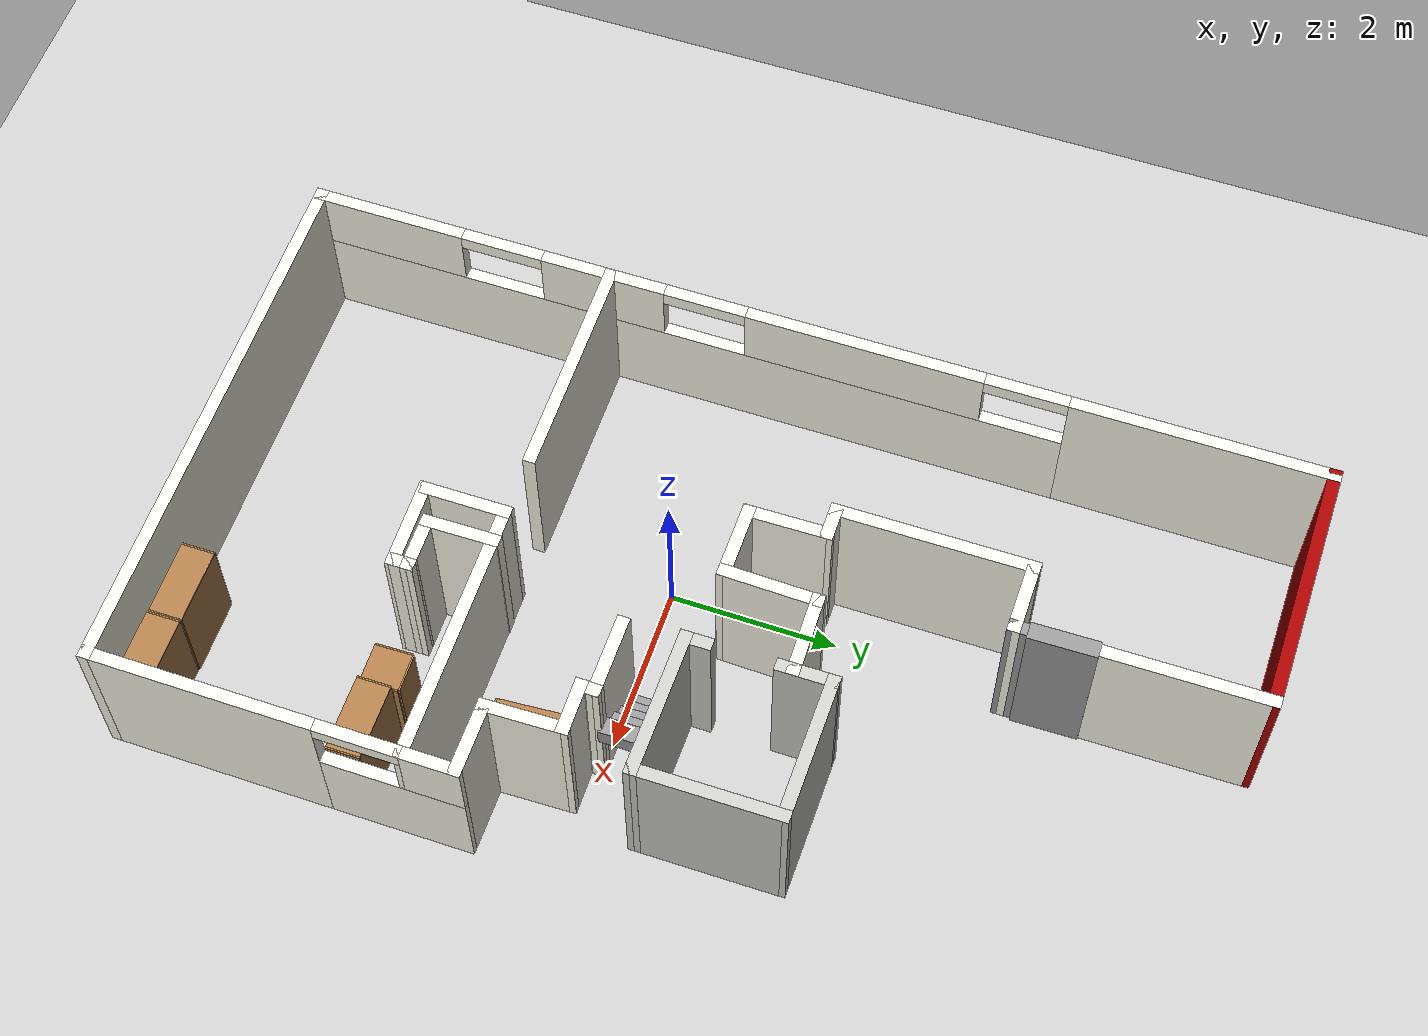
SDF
<sdf version="1.6">
 <world name="default">
  <light name="sun" type="directional">
   <pose>0 0 10 0 -0 0</pose>
   <diffuse>0.8 0.8 0.8 1</diffuse>
   <specular>0.2 0.2 0.2 1</specular>
   <attenuation>
    <range>1000</range>
    <constant>0.9</constant>
    <linear>0.01</linear>
    <quadratic>0.001</quadratic>
   </attenuation>
   <direction>-0.5 0.1 -0.9</direction>
  </light>
  <model name="ground_plane">
   <static>1</static>
   <link name="link">
    <collision name="collision">
     <geometry><plane><normal>0 0 1</normal><size>100 100</size></plane></geometry>
     <surface>
      <contact><collide_bitmask>65535</collide_bitmask></contact>
      <friction><ode><mu>100</mu><mu2>50</mu2></ode></friction>
     </surface>
    </collision>
    <visual name="visual">
     <cast_shadows>0</cast_shadows>
     <geometry><plane><normal>0 0 1</normal><size>100 100</size></plane></geometry>
     <material>
      <script><uri>file://media/materials/scripts/gazebo.material</uri><name>Gazebo/Grey</name></script>
     </material>
    </visual>
   </link>
  </model>
  <gravity>0 0 -9.8</gravity>
  <magnetic_field>6e-06 2.3e-05 -4.2e-05</magnetic_field>
  <atmosphere type="adiabatic"/>
  <physics name="default_physics" default="0" type="ode">
   <max_step_size>0.001</max_step_size>
   <real_time_factor>1</real_time_factor>
   <real_time_update_rate>1000</real_time_update_rate>
  </physics>
  <scene><ambient>0.4 0.4 0.4 1</ambient><background>0.7 0.7 0.7 1</background><shadows>1</shadows></scene>
  <spherical_coordinates>
   <surface_model>EARTH_WGS84</surface_model>
   <latitude_deg>0</latitude_deg>
   <longitude_deg>0</longitude_deg>
   <elevation>0</elevation>
   <heading_deg>0</heading_deg>
  </spherical_coordinates>
  <model name="Apartment">
   <pose>0.435698 0.75844 0 0 -0 0</pose>
   <link name="Door_0">
    <collision name="Door_0_Collision">
     <geometry><box><size>0.792 0.2 2</size></box></geometry>
     <pose>0 0 1 0 -0 0</pose>
    </collision>
    <visual name="Door_0_Visual">
     <pose>0 0 1 0 -0 0</pose>
     <geometry><box><size>0.792 0.2 2</size></box></geometry>
     <material>
      <script><uri>file://media/materials/scripts/gazebo.material</uri><name>Gazebo/Grey</name></script>
     </material>
    </visual>
    <pose>-0.272982 3.76942 0 0 -0 1.58229</pose>
   </link>
   <link name="Stairs_1">
    <visual name="Stairs_1_Visual_0">
     <pose>1.08577 -0.451347 0.12 0 -0 1.5708</pose>
     <geometry><box><size>0.6 0.2 0.24</size></box></geometry>
     <material>
      <script><uri>file://media/materials/scripts/gazebo.material</uri><name>Gazebo/Grey</name></script>
      <ambient>1 1 1 1</ambient>
     </material>
     <meta><layer>0</layer></meta>
    </visual>
    <collision name="Stairs_1_Collision_0">
     <geometry><box><size>0.6 0.2 0.24</size></box></geometry>
     <pose>1.08577 -0.451347 0.12 0 -0 1.5708</pose>
    </collision>
    <visual name="Stairs_1_Visual_1">
     <pose>1.28577 -0.451347 0.36 0 -0 1.5708</pose>
     <geometry><box><size>0.6 0.2 0.24</size></box></geometry>
     <material>
      <script><uri>file://media/materials/scripts/gazebo.material</uri><name>Gazebo/Grey</name></script>
      <ambient>1 1 1 1</ambient>
     </material>
     <meta><layer>0</layer></meta>
    </visual>
    <collision name="Stairs_1_Collision_1">
     <geometry><box><size>0.6 0.2 0.24</size></box></geometry>
     <pose>1.28577 -0.451347 0.36 0 -0 1.5708</pose>
    </collision>
    <visual name="Stairs_1_Visual_2">
     <pose>1.48577 -0.451347 0.6 0 -0 1.5708</pose>
     <geometry><box><size>0.6 0.2 0.24</size></box></geometry>
     <material>
      <script><uri>file://media/materials/scripts/gazebo.material</uri><name>Gazebo/Grey</name></script>
      <ambient>1 1 1 1</ambient>
     </material>
     <meta><layer>0</layer></meta>
    </visual>
    <collision name="Stairs_1_Collision_2">
     <geometry><box><size>0.6 0.2 0.24</size></box></geometry>
     <pose>1.48577 -0.451347 0.6 0 -0 1.5708</pose>
    </collision>
    <visual name="Stairs_1_Visual_3">
     <pose>1.68577 -0.451347 0.84 0 -0 1.5708</pose>
     <geometry><box><size>0.6 0.2 0.24</size></box></geometry>
     <material>
      <script><uri>file://media/materials/scripts/gazebo.material</uri><name>Gazebo/Grey</name></script>
      <ambient>1 1 1 1</ambient>
     </material>
     <meta><layer>0</layer></meta>
    </visual>
    <collision name="Stairs_1_Collision_3">
     <geometry><box><size>0.6 0.2 0.24</size></box></geometry>
     <pose>1.68577 -0.451347 0.84 0 -0 1.5708</pose>
    </collision>
    <visual name="Stairs_1_Visual_4">
     <pose>1.88577 -0.451347 1.08 0 -0 1.5708</pose>
     <geometry><box><size>0.6 0.2 0.24</size></box></geometry>
     <material>
      <script><uri>file://media/materials/scripts/gazebo.material</uri><name>Gazebo/Grey</name></script>
      <ambient>1 1 1 1</ambient>
     </material>
     <meta><layer>0</layer></meta>
    </visual>
    <collision name="Stairs_1_Collision_4">
     <geometry><box><size>0.6 0.2 0.24</size></box></geometry>
     <pose>1.88577 -0.451347 1.08 0 -0 1.5708</pose>
    </collision>
   </link>
   <link name="Wall_0">
    <collision name="Wall_0_Collision">
     <geometry><box><size>2.97893 0.15 2</size></box></geometry>
     <pose>0 0 1 0 -0 0</pose>
    </collision>
    <visual name="Wall_0_Visual">
     <pose>0 0 1 0 -0 0</pose>
     <geometry><box><size>2.97893 0.15 2</size></box></geometry>
     <material>
      <script><uri>file://media/materials/scripts/gazebo.material</uri><name>Gazebo/Grey</name></script>
      <ambient>1 0.988235 0.929412 1</ambient>
     </material>
     <meta><layer>0</layer></meta>
    </visual>
    <pose>-0.276026 4.64956 0 0 -0 1.57256</pose>
   </link>
   <link name="Wall_1">
    <collision name="Wall_1_Collision">
     <geometry><box><size>3.08816 0.15 2</size></box></geometry>
     <pose>0 0 1 0 -0 0</pose>
    </collision>
    <visual name="Wall_1_Visual">
     <pose>0 0 1 0 -0 0</pose>
     <geometry><box><size>3.08816 0.15 2</size></box></geometry>
     <material>
      <script><uri>file://media/materials/scripts/gazebo.material</uri><name>Gazebo/Grey</name></script>
      <ambient>0.666667 0 0 1</ambient>
     </material>
     <meta><layer>0</layer></meta>
    </visual>
    <pose>-1.74753 6.07156 0 0 -0 3.13649</pose>
   </link>
   <link name="Wall_10">
    <collision name="Wall_10_Collision">
     <geometry><box><size>0.311078 0.15 2</size></box></geometry>
     <pose>0 0 1 0 -0 0</pose>
    </collision>
    <visual name="Wall_10_Visual">
     <pose>0 0 1 0 -0 0</pose>
     <geometry><box><size>0.311078 0.15 2</size></box></geometry>
     <material>
      <script><uri>file://media/materials/scripts/gazebo.material</uri><name>Gazebo/Grey</name></script>
      <ambient>1 0.988235 0.929412 1</ambient>
     </material>
     <meta><layer>0</layer></meta>
    </visual>
    <pose>1.87997 -0.868444 0 0 -0 1.53975</pose>
   </link>
   <link name="Wall_11">
    <collision name="Wall_11_Collision">
     <geometry><box><size>1 0.15 2</size></box></geometry>
     <pose>0 0 1 0 -0 0</pose>
    </collision>
    <visual name="Wall_11_Visual">
     <pose>0 0 1 0 -0 0</pose>
     <geometry><box><size>1 0.15 2</size></box></geometry>
     <material>
      <script><uri>file://media/materials/scripts/gazebo.material</uri><name>Gazebo/Grey</name></script>
      <ambient>1 0.988235 0.929412 1</ambient>
     </material>
     <meta><layer>0</layer></meta>
    </visual>
    <pose>1.45747 -0.784944 0 0 -0 3.13453</pose>
   </link>
   <link name="Wall_13">
    <collision name="Wall_13_Collision">
     <geometry><box><size>2.75 0.15 2</size></box></geometry>
     <pose>0 0 1 0 -0 0</pose>
    </collision>
    <visual name="Wall_13_Visual">
     <pose>0 0 1 0 -0 0</pose>
     <geometry><box><size>2.75 0.15 2</size></box></geometry>
     <material>
      <script><uri>file://media/materials/scripts/gazebo.material</uri><name>Gazebo/Grey</name></script>
      <ambient>1 0.988235 0.929412 1</ambient>
     </material>
     <meta><layer>0</layer></meta>
    </visual>
    <pose>-1.91153 -2.44094 0 0 -0 0</pose>
   </link>
   <link name="Wall_15">
    <collision name="Wall_15_Collision">
     <geometry><box><size>3.21378 0.15 2</size></box></geometry>
     <pose>0 0 1 0 -0 0</pose>
    </collision>
    <visual name="Wall_15_Visual">
     <pose>0 0 1 0 -0 0</pose>
     <geometry><box><size>3.21378 0.15 2</size></box></geometry>
     <material>
      <script><uri>file://media/materials/scripts/gazebo.material</uri><name>Gazebo/Grey</name></script>
      <ambient>1 0.988235 0.929412 1</ambient>
     </material>
     <meta><layer>0</layer></meta>
    </visual>
    <pose>1.67147 -2.45744 0 0 0 -3.138</pose>
   </link>
   <link name="Wall_16">
    <collision name="Wall_16_Collision">
     <geometry><box><size>1.1 0.15 2</size></box></geometry>
     <pose>0 0 1 0 -0 0</pose>
    </collision>
    <visual name="Wall_16_Visual">
     <pose>0 0 1 0 -0 0</pose>
     <geometry><box><size>1.1 0.15 2</size></box></geometry>
     <material>
      <script><uri>file://media/materials/scripts/gazebo.material</uri><name>Gazebo/Grey</name></script>
      <ambient>1 0.988235 0.929412 1</ambient>
     </material>
     <meta><layer>0</layer></meta>
    </visual>
    <pose>0.139474 -2.93794 0 0 0 -1.5708</pose>
   </link>
   <link name="Wall_17">
    <collision name="Wall_17_Collision">
     <geometry><box><size>1.1012 0.15 2</size></box></geometry>
     <pose>0 0 1 0 -0 0</pose>
    </collision>
    <visual name="Wall_17_Visual">
     <pose>0 0 1 0 -0 0</pose>
     <geometry><box><size>1.1012 0.15 2</size></box></geometry>
     <material>
      <script><uri>file://media/materials/scripts/gazebo.material</uri><name>Gazebo/Grey</name></script>
      <ambient>1 0.988235 0.929412 1</ambient>
     </material>
     <meta><layer>0</layer></meta>
    </visual>
    <pose>0.615474 -3.40644 0 0 -0 0.013655</pose>
   </link>
   <link name="Wall_18">
    <collision name="Wall_18_Collision">
     <geometry><box><size>0.32365 0.15 2</size></box></geometry>
     <pose>0 0 1 0 -0 0</pose>
    </collision>
    <visual name="Wall_18_Visual">
     <pose>0 0 1 0 -0 0</pose>
     <geometry><box><size>0.32365 0.15 2</size></box></geometry>
     <material>
      <script><uri>file://media/materials/scripts/gazebo.material</uri><name>Gazebo/Grey</name></script>
      <ambient>1 0.988235 0.929412 1</ambient>
     </material>
     <meta><layer>0</layer></meta>
    </visual>
    <pose>1.09147 -3.31294 0 0 -0 1.5708</pose>
   </link>
   <link name="Wall_19">
    <collision name="Wall_19_Collision">
     <geometry><box><size>0.719 0.15 2</size></box></geometry>
     <pose>0 0 1 0 -0 0</pose>
    </collision>
    <visual name="Wall_19_Visual">
     <pose>0 0 1 0 -0 0</pose>
     <geometry><box><size>0.719 0.15 2</size></box></geometry>
     <material>
      <script><uri>file://media/materials/scripts/gazebo.material</uri><name>Gazebo/Grey</name></script>
      <ambient>1 0.988235 0.929412 1</ambient>
     </material>
     <meta><layer>0</layer></meta>
    </visual>
    <pose>0.806974 -3.22744 0 0 0 -3.13632</pose>
   </link>
   <link name="Wall_2">
    <pose>-3.21653 0.012056 0 0 0 -1.5708</pose>
    <visual name="Wall_2_Visual_0">
     <pose>-4.59104 0 1 0 -0 0</pose>
     <geometry><box><size>3.10147 0.15 2</size></box></geometry>
     <material>
      <script><uri>file://media/materials/scripts/gazebo.material</uri><name>Gazebo/Grey</name></script>
      <ambient>1 0.988235 0.929412 1</ambient>
     </material>
     <meta><layer>0</layer></meta>
    </visual>
    <collision name="Wall_2_Collision_0">
     <geometry><box><size>3.10147 0.15 2</size></box></geometry>
     <pose>-4.59104 0 1 0 -0 0</pose>
    </collision>
    <visual name="Wall_2_Visual_1">
     <pose>1.55073 0 0.6095 0 -0 0</pose>
     <geometry><box><size>9.18207 0.15 1.219</size></box></geometry>
     <material>
      <script><uri>file://media/materials/scripts/gazebo.material</uri><name>Gazebo/Grey</name></script>
      <ambient>1 0.988235 0.929412 1</ambient>
     </material>
     <meta><layer>0</layer></meta>
    </visual>
    <collision name="Wall_2_Collision_1">
     <geometry><box><size>9.18207 0.15 1.219</size></box></geometry>
     <pose>1.55073 0 0.6095 0 -0 0</pose>
    </collision>
    <visual name="Wall_2_Visual_2">
     <pose>-0.630934 0 1.6095 0 -0 0</pose>
     <geometry><box><size>2.83873 0.15 0.781</size></box></geometry>
     <material>
      <script><uri>file://media/materials/scripts/gazebo.material</uri><name>Gazebo/Grey</name></script>
      <ambient>1 0.988235 0.929412 1</ambient>
     </material>
     <meta><layer>0</layer></meta>
    </visual>
    <collision name="Wall_2_Collision_2">
     <geometry><box><size>2.83873 0.15 0.781</size></box></geometry>
     <pose>-0.630934 0 1.6095 0 -0 0</pose>
    </collision>
    <visual name="Wall_2_Visual_3">
     <pose>2.53117 0 1.6095 0 -0 0</pose>
     <geometry><box><size>1.50548 0.15 0.781</size></box></geometry>
     <material>
      <script><uri>file://media/materials/scripts/gazebo.material</uri><name>Gazebo/Grey</name></script>
      <ambient>1 0.988235 0.929412 1</ambient>
     </material>
     <meta><layer>0</layer></meta>
    </visual>
    <collision name="Wall_2_Collision_3">
     <geometry><box><size>1.50548 0.15 0.781</size></box></geometry>
     <pose>2.53117 0 1.6095 0 -0 0</pose>
    </collision>
    <visual name="Wall_2_Visual_4">
     <pose>5.20784 0 1.6095 0 -0 0</pose>
     <geometry><box><size>1.86786 0.15 0.781</size></box></geometry>
     <material>
      <script><uri>file://media/materials/scripts/gazebo.material</uri><name>Gazebo/Grey</name></script>
      <ambient>1 0.988235 0.929412 1</ambient>
     </material>
     <meta><layer>0</layer></meta>
    </visual>
    <collision name="Wall_2_Collision_4">
     <geometry><box><size>1.86786 0.15 0.781</size></box></geometry>
     <pose>5.20784 0 1.6095 0 -0 0</pose>
    </collision>
    <visual name="Wall_2_Visual_5">
     <pose>-2.5453 0 1.9095 0 -0 0</pose>
     <geometry><box><size>0.99 0.15 0.181</size></box></geometry>
     <material>
      <script><uri>file://media/materials/scripts/gazebo.material</uri><name>Gazebo/Grey</name></script>
      <ambient>1 0.988235 0.929412 1</ambient>
     </material>
     <meta><layer>0</layer></meta>
    </visual>
    <collision name="Wall_2_Collision_5">
     <geometry><box><size>0.99 0.15 0.181</size></box></geometry>
     <pose>-2.5453 0 1.9095 0 -0 0</pose>
    </collision>
    <visual name="Wall_2_Visual_6">
     <pose>1.28343 0 1.9095 0 -0 0</pose>
     <geometry><box><size>0.99 0.15 0.181</size></box></geometry>
     <material>
      <script><uri>file://media/materials/scripts/gazebo.material</uri><name>Gazebo/Grey</name></script>
      <ambient>1 0.988235 0.929412 1</ambient>
     </material>
     <meta><layer>0</layer></meta>
    </visual>
    <collision name="Wall_2_Collision_6">
     <geometry><box><size>0.99 0.15 0.181</size></box></geometry>
     <pose>1.28343 0 1.9095 0 -0 0</pose>
    </collision>
    <visual name="Wall_2_Visual_7">
     <pose>3.77891 0 1.9095 0 -0 0</pose>
     <geometry><box><size>0.99 0.15 0.181</size></box></geometry>
     <material>
      <script><uri>file://media/materials/scripts/gazebo.material</uri><name>Gazebo/Grey</name></script>
      <ambient>1 0.988235 0.929412 1</ambient>
     </material>
     <meta><layer>0</layer></meta>
    </visual>
    <collision name="Wall_2_Collision_7">
     <geometry><box><size>0.99 0.15 0.181</size></box></geometry>
     <pose>3.77891 0 1.9095 0 -0 0</pose>
    </collision>
   </link>
   <link name="Wall_20">
    <collision name="Wall_20_Collision">
     <geometry><box><size>0.925382 0.15 2</size></box></geometry>
     <pose>0 0 1 0 -0 0</pose>
    </collision>
    <visual name="Wall_20_Visual">
     <pose>0 0 1 0 -0 0</pose>
     <geometry><box><size>0.925382 0.15 2</size></box></geometry>
     <material>
      <script><uri>file://media/materials/scripts/gazebo.material</uri><name>Gazebo/Grey</name></script>
      <ambient>1 0.988235 0.929412 1</ambient>
     </material>
     <meta><layer>0</layer></meta>
    </visual>
    <pose>0.519474 -2.84094 0 0 -0 1.57853</pose>
   </link>
   <link name="Wall_23">
    <collision name="Wall_23_Collision">
     <geometry><box><size>1.79124 0.15 2</size></box></geometry>
     <pose>0 0 1 0 -0 0</pose>
    </collision>
    <visual name="Wall_23_Visual">
     <pose>0 0 1 0 -0 0</pose>
     <geometry><box><size>1.79124 0.15 2</size></box></geometry>
     <material>
      <script><uri>file://media/materials/scripts/gazebo.material</uri><name>Gazebo/CeilingTiled</name></script>
      <ambient>1 1 1 1</ambient>
     </material>
     <meta><layer>0</layer></meta>
    </visual>
    <pose>1.79897 -0.097944 0 0 0 -0.015843</pose>
   </link>
   <link name="Wall_24">
    <collision name="Wall_24_Collision">
     <geometry><box><size>1.8195 0.15 2</size></box></geometry>
     <pose>0 0 1 0 -0 0</pose>
    </collision>
    <visual name="Wall_24_Visual">
     <pose>0 0 1 0 -0 0</pose>
     <geometry><box><size>1.8195 0.15 2</size></box></geometry>
     <material>
      <script><uri>file://media/materials/scripts/gazebo.material</uri><name>Gazebo/CeilingTiled</name></script>
      <ambient>1 1 1 1</ambient>
     </material>
     <meta><layer>0</layer></meta>
    </visual>
    <pose>2.61947 0.723556 0 0 -0 1.5708</pose>
   </link>
   <link name="Wall_25">
    <collision name="Wall_25_Collision">
     <geometry><box><size>1.79103 0.15 2</size></box></geometry>
     <pose>0 0 1 0 -0 0</pose>
    </collision>
    <visual name="Wall_25_Visual">
     <pose>0 0 1 0 -0 0</pose>
     <geometry><box><size>1.79103 0.15 2</size></box></geometry>
     <material>
      <script><uri>file://media/materials/scripts/gazebo.material</uri><name>Gazebo/CeilingTiled</name></script>
      <ambient>1 1 1 1</ambient>
     </material>
     <meta><layer>0</layer></meta>
    </visual>
    <pose>1.79897 1.56706 0 0 -0 3.13062</pose>
   </link>
   <link name="Wall_28">
    <collision name="Wall_28_Collision">
     <geometry><box><size>1.02916 0.15 2</size></box></geometry>
     <pose>0 0 1 0 -0 0</pose>
    </collision>
    <visual name="Wall_28_Visual">
     <pose>0 0 1 0 -0 0</pose>
     <geometry><box><size>1.02916 0.15 2</size></box></geometry>
     <material>
      <script><uri>file://media/materials/scripts/gazebo.material</uri><name>Gazebo/Grey</name></script>
      <ambient>1 0.988235 0.929412 1</ambient>
     </material>
     <meta><layer>0</layer></meta>
    </visual>
    <pose>0.535929 1.12956 0 0 0 -3.12908</pose>
   </link>
   <link name="Wall_30">
    <collision name="Wall_30_Collision">
     <geometry><box><size>1.21772 0.15 2</size></box></geometry>
     <pose>0 0 1 0 -0 0</pose>
    </collision>
    <visual name="Wall_30_Visual">
     <pose>0 0 1 0 -0 0</pose>
     <geometry><box><size>1.21772 0.15 2</size></box></geometry>
     <material>
      <script><uri>file://media/materials/scripts/gazebo.material</uri><name>Gazebo/Grey</name></script>
      <ambient>1 0.988235 0.929412 1</ambient>
     </material>
     <meta><layer>0</layer></meta>
    </visual>
    <pose>0.089183 0.590208 0 0 0 -1.5979</pose>
   </link>
   <link name="Wall_31">
    <collision name="Wall_31_Collision">
     <geometry><box><size>0.941296 0.15 2</size></box></geometry>
     <pose>0 0 1 0 -0 0</pose>
    </collision>
    <visual name="Wall_31_Visual">
     <pose>0 0 1 0 -0 0</pose>
     <geometry><box><size>0.941296 0.15 2</size></box></geometry>
     <material>
      <script><uri>file://media/materials/scripts/gazebo.material</uri><name>Gazebo/Grey</name></script>
      <ambient>1 0.988235 0.929412 1</ambient>
     </material>
     <meta><layer>0</layer></meta>
    </visual>
    <pose>-0.320908 0.061208 0 0 -0 3.12934</pose>
   </link>
   <link name="Wall_32">
    <collision name="Wall_32_Collision">
     <geometry><box><size>1.06103 0.15 2</size></box></geometry>
     <pose>0 0 1 0 -0 0</pose>
    </collision>
    <visual name="Wall_32_Visual">
     <pose>0 0 1 0 -0 0</pose>
     <geometry><box><size>1.06103 0.15 2</size></box></geometry>
     <material>
      <script><uri>file://media/materials/scripts/gazebo.material</uri><name>Gazebo/Grey</name></script>
      <ambient>1 0.988235 0.929412 1</ambient>
     </material>
     <meta><layer>0</layer></meta>
    </visual>
    <pose>-0.721026 0.521556 0 0 -0 1.58068</pose>
   </link>
   <link name="Wall_33">
    <collision name="Wall_33_Collision">
     <geometry><box><size>0.45987 0.15 2</size></box></geometry>
     <pose>0 0 1 0 -0 0</pose>
    </collision>
    <visual name="Wall_33_Visual">
     <pose>0 0 1 0 -0 0</pose>
     <geometry><box><size>0.45987 0.15 2</size></box></geometry>
     <material>
      <script><uri>file://media/materials/scripts/gazebo.material</uri><name>Gazebo/Grey</name></script>
      <ambient>1 0.988235 0.929412 1</ambient>
     </material>
     <meta><layer>0</layer></meta>
    </visual>
    <pose>-0.880526 0.977056 0 0 -0 3.14159</pose>
   </link>
   <link name="Wall_35">
    <collision name="Wall_35_Collision">
     <geometry><box><size>2.40185 0.15 2</size></box></geometry>
     <pose>0 0 1 0 -0 0</pose>
    </collision>
    <visual name="Wall_35_Visual">
     <pose>0 0 1 0 -0 0</pose>
     <geometry><box><size>2.40185 0.15 2</size></box></geometry>
     <material>
      <script><uri>file://media/materials/scripts/gazebo.material</uri><name>Gazebo/Grey</name></script>
      <ambient>1 0.988235 0.929412 1</ambient>
     </material>
     <meta><layer>0</layer></meta>
    </visual>
    <pose>-1.03553 2.10256 0 0 -0 1.5708</pose>
   </link>
   <link name="Wall_36">
    <collision name="Wall_36_Collision">
     <geometry><box><size>0.915215 0.15 2</size></box></geometry>
     <pose>0 0 1 0 -0 0</pose>
    </collision>
    <visual name="Wall_36_Visual">
     <pose>0 0 1 0 -0 0</pose>
     <geometry><box><size>0.915215 0.15 2</size></box></geometry>
     <material>
      <script><uri>file://media/materials/scripts/gazebo.material</uri><name>Gazebo/Grey</name></script>
      <ambient>1 0.988235 0.929412 1</ambient>
     </material>
     <meta><layer>0</layer></meta>
    </visual>
    <pose>-0.653026 3.22506 0 0 0 -0.007843</pose>
   </link>
   <link name="Wall_37">
    <collision name="Wall_37_Collision">
     <geometry><box><size>0.301905 0.15 2</size></box></geometry>
     <pose>0 0 1 0 -0 0</pose>
    </collision>
    <visual name="Wall_37_Visual">
     <pose>0 0 1 0 -0 0</pose>
     <geometry><box><size>0.301905 0.15 2</size></box></geometry>
     <material>
      <script><uri>file://media/materials/scripts/gazebo.material</uri><name>Gazebo/Grey</name></script>
      <ambient>1 1 1 1</ambient>
     </material>
     <meta><layer>0</layer></meta>
    </visual>
    <pose>-0.270526 3.29806 0 0 -0 1.5708</pose>
   </link>
   <link name="Wall_4">
    <collision name="Wall_4_Collision">
     <geometry><box><size>6.55531 0.15 2</size></box></geometry>
     <pose>0 0 1 0 -0 0</pose>
    </collision>
    <visual name="Wall_4_Visual">
     <pose>0 0 1 0 -0 0</pose>
     <geometry><box><size>6.55531 0.15 2</size></box></geometry>
     <material>
      <script><uri>file://media/materials/scripts/gazebo.material</uri><name>Gazebo/Grey</name></script>
      <ambient>1 0.988235 0.929412 1</ambient>
     </material>
     <meta><layer>0</layer></meta>
    </visual>
    <pose>-0.014026 -6.06694 0 0 0 -0.003747</pose>
   </link>
   <link name="Wall_42">
    <pose>0.978474 0.745556 0 0 0 -1.5708</pose>
    <visual name="Wall_42_Visual_0">
     <pose>-0.544709 0 1 0 -0 0</pose>
     <geometry><box><size>0.721287 0.15 2</size></box></geometry>
     <material>
      <script><uri>file://media/materials/scripts/gazebo.material</uri><name>Gazebo/CeilingTiled</name></script>
      <ambient>1 1 1 1</ambient>
     </material>
     <meta><layer>0</layer></meta>
    </visual>
    <collision name="Wall_42_Collision_0">
     <geometry><box><size>0.721287 0.15 2</size></box></geometry>
     <pose>-0.544709 0 1 0 -0 0</pose>
    </collision>
    <visual name="Wall_42_Visual_1">
     <pose>0.710643 0 1 0 -0 0</pose>
     <geometry><box><size>0.389419 0.15 2</size></box></geometry>
     <material>
      <script><uri>file://media/materials/scripts/gazebo.material</uri><name>Gazebo/CeilingTiled</name></script>
      <ambient>1 1 1 1</ambient>
     </material>
     <meta><layer>0</layer></meta>
    </visual>
    <collision name="Wall_42_Collision_1">
     <geometry><box><size>0.389419 0.15 2</size></box></geometry>
     <pose>0.710643 0 1 0 -0 0</pose>
    </collision>
   </link>
   <link name="Wall_5">
    <pose>3.20247 -3.96044 0 0 -0 1.56419</pose>
    <visual name="Wall_5_Visual_0">
     <pose>-0.841786 0 1 0 -0 0</pose>
     <geometry><box><size>2.70352 0.15 2</size></box></geometry>
     <material>
      <script><uri>file://media/materials/scripts/gazebo.material</uri><name>Gazebo/Grey</name></script>
      <ambient>1 0.988235 0.929412 1</ambient>
     </material>
     <meta><layer>0</layer></meta>
    </visual>
    <collision name="Wall_5_Collision_0">
     <geometry><box><size>2.70352 0.15 2</size></box></geometry>
     <pose>-0.841786 0 1 0 -0 0</pose>
    </collision>
    <visual name="Wall_5_Visual_1">
     <pose>1.35176 0 0.6095 0 -0 0</pose>
     <geometry><box><size>1.68357 0.15 1.219</size></box></geometry>
     <material>
      <script><uri>file://media/materials/scripts/gazebo.material</uri><name>Gazebo/Grey</name></script>
      <ambient>1 0.988235 0.929412 1</ambient>
     </material>
     <meta><layer>0</layer></meta>
    </visual>
    <collision name="Wall_5_Collision_1">
     <geometry><box><size>1.68357 0.15 1.219</size></box></geometry>
     <pose>1.35176 0 0.6095 0 -0 0</pose>
    </collision>
    <visual name="Wall_5_Visual_2">
     <pose>1.84676 0 1.6095 0 -0 0</pose>
     <geometry><box><size>0.693573 0.15 0.781</size></box></geometry>
     <material>
      <script><uri>file://media/materials/scripts/gazebo.material</uri><name>Gazebo/Grey</name></script>
      <ambient>1 0.988235 0.929412 1</ambient>
     </material>
     <meta><layer>0</layer></meta>
    </visual>
    <collision name="Wall_5_Collision_2">
     <geometry><box><size>0.693573 0.15 0.781</size></box></geometry>
     <pose>1.84676 0 1.6095 0 -0 0</pose>
    </collision>
    <visual name="Wall_5_Visual_3">
     <pose>1.00497 0 1.9095 0 -0 0</pose>
     <geometry><box><size>0.99 0.15 0.181</size></box></geometry>
     <material>
      <script><uri>file://media/materials/scripts/gazebo.material</uri><name>Gazebo/Grey</name></script>
      <ambient>1 0.988235 0.929412 1</ambient>
     </material>
     <meta><layer>0</layer></meta>
    </visual>
    <collision name="Wall_5_Collision_3">
     <geometry><box><size>0.99 0.15 0.181</size></box></geometry>
     <pose>1.00497 0 1.9095 0 -0 0</pose>
    </collision>
   </link>
   <link name="Wall_7">
    <collision name="Wall_7_Collision">
     <geometry><box><size>0.940612 0.15 2</size></box></geometry>
     <pose>0 0 1 0 -0 0</pose>
    </collision>
    <visual name="Wall_7_Visual">
     <pose>0 0 1 0 -0 0</pose>
     <geometry><box><size>0.940612 0.15 2</size></box></geometry>
     <material>
      <script><uri>file://media/materials/scripts/gazebo.material</uri><name>Gazebo/Grey</name></script>
      <ambient>1 0.988235 0.929412 1</ambient>
     </material>
     <meta><layer>0</layer></meta>
    </visual>
    <pose>2.82097 -1.83894 0 0 -0 3.13401</pose>
   </link>
   <link name="Wall_8">
    <collision name="Wall_8_Collision">
     <geometry><box><size>1.04134 0.15 2</size></box></geometry>
     <pose>0 0 1 0 -0 0</pose>
    </collision>
    <visual name="Wall_8_Visual">
     <pose>0 0 1 0 -0 0</pose>
     <geometry><box><size>1.04134 0.15 2</size></box></geometry>
     <material>
      <script><uri>file://media/materials/scripts/gazebo.material</uri><name>Gazebo/Grey</name></script>
      <ambient>1 0.988235 0.929412 1</ambient>
     </material>
     <meta><layer>0</layer></meta>
    </visual>
    <pose>2.41547 -1.39044 0 0 -0 1.59324</pose>
   </link>
   <link name="Wall_9">
    <collision name="Wall_9_Collision">
     <geometry><box><size>0.678216 0.15 2</size></box></geometry>
     <pose>0 0 1 0 -0 0</pose>
    </collision>
    <visual name="Wall_9_Visual">
     <pose>0 0 1 0 -0 0</pose>
     <geometry><box><size>0.678216 0.15 2</size></box></geometry>
     <material>
      <script><uri>file://media/materials/scripts/gazebo.material</uri><name>Gazebo/Grey</name></script>
      <ambient>1 0.988235 0.929412 1</ambient>
     </material>
     <meta><layer>0</layer></meta>
    </visual>
    <pose>2.14147 -0.946944 0 0 0 -3.13402</pose>
   </link>
   <static>1</static>
  </model>
  <model name="bookshelf">
   <static>1</static>
   <link name="link">
    <inertial><mass>1</mass></inertial>
    <collision name="back">
     <pose>0 0.005 0.6 0 -0 0</pose>
     <geometry><box><size>0.9 0.01 1.2</size></box></geometry>
    </collision>
    <visual name="visual1">
     <pose>0 0.005 0.6 0 -0 0</pose>
     <geometry><box><size>0.9 0.01 1.2</size></box></geometry>
     <material>
      <script><uri>file://media/materials/scripts/gazebo.material</uri><name>Gazebo/Wood</name></script>
     </material>
    </visual>
    <collision name="left_side">
     <pose>0.45 -0.195 0.6 0 -0 0</pose>
     <geometry><box><size>0.02 0.4 1.2</size></box></geometry>
    </collision>
    <visual name="visual2">
     <pose>0.45 -0.195 0.6 0 -0 0</pose>
     <geometry><box><size>0.02 0.4 1.2</size></box></geometry>
     <material>
      <script><uri>file://media/materials/scripts/gazebo.material</uri><name>Gazebo/Wood</name></script>
     </material>
    </visual>
    <collision name="right_side">
     <pose>-0.45 -0.195 0.6 0 -0 0</pose>
     <geometry><box><size>0.02 0.4 1.2</size></box></geometry>
    </collision>
    <visual name="visual3">
     <pose>-0.45 -0.195 0.6 0 -0 0</pose>
     <geometry><box><size>0.02 0.4 1.2</size></box></geometry>
     <material>
      <script><uri>file://media/materials/scripts/gazebo.material</uri><name>Gazebo/Wood</name></script>
     </material>
    </visual>
    <collision name="bottom">
     <pose>0 -0.195 0.03 0 -0 0</pose>
     <geometry><box><size>0.88 0.4 0.06</size></box></geometry>
    </collision>
    <visual name="visual4">
     <pose>0 -0.195 0.03 0 -0 0</pose>
     <geometry><box><size>0.88 0.4 0.06</size></box></geometry>
     <material>
      <script><uri>file://media/materials/scripts/gazebo.material</uri><name>Gazebo/Wood</name></script>
     </material>
    </visual>
    <collision name="top">
     <pose>0 -0.195 1.19 0 -0 0</pose>
     <geometry><box><size>0.88 0.4 0.02</size></box></geometry>
    </collision>
    <visual name="visual5">
     <pose>0 -0.195 1.19 0 -0 0</pose>
     <geometry><box><size>0.88 0.4 0.02</size></box></geometry>
     <material>
      <script><uri>file://media/materials/scripts/gazebo.material</uri><name>Gazebo/Wood</name></script>
     </material>
    </visual>
    <collision name="low_shelf">
     <pose>0 -0.195 0.43 0 -0 0</pose>
     <geometry><box><size>0.88 0.4 0.02</size></box></geometry>
    </collision>
    <visual name="visual6">
     <pose>0 -0.195 0.43 0 -0 0</pose>
     <geometry><box><size>0.88 0.4 0.02</size></box></geometry>
     <material>
      <script><uri>file://media/materials/scripts/gazebo.material</uri><name>Gazebo/Wood</name></script>
     </material>
    </visual>
    <collision name="high_shelf">
     <pose>0 -0.195 0.8 0 -0 0</pose>
     <geometry><box><size>0.88 0.4 0.02</size></box></geometry>
    </collision>
    <visual name="visual7">
     <pose>0 -0.195 0.8 0 -0 0</pose>
     <geometry><box><size>0.88 0.4 0.02</size></box></geometry>
     <material>
      <script><uri>file://media/materials/scripts/gazebo.material</uri><name>Gazebo/Wood</name></script>
     </material>
    </visual>
   </link>
   <pose>3.07661 -2.31495 0 0 -0 0</pose>
  </model>
  <model name="bookshelf_0">
   <static>1</static>
   <link name="link">
    <inertial><mass>1</mass></inertial>
    <collision name="back">
     <pose>0 0.005 0.6 0 -0 0</pose>
     <geometry><box><size>0.9 0.01 1.2</size></box></geometry>
    </collision>
    <visual name="visual1">
     <pose>0 0.005 0.6 0 -0 0</pose>
     <geometry><box><size>0.9 0.01 1.2</size></box></geometry>
     <material>
      <script><uri>file://media/materials/scripts/gazebo.material</uri><name>Gazebo/Wood</name></script>
     </material>
    </visual>
    <collision name="left_side">
     <pose>0.45 -0.195 0.6 0 -0 0</pose>
     <geometry><box><size>0.02 0.4 1.2</size></box></geometry>
    </collision>
    <visual name="visual2">
     <pose>0.45 -0.195 0.6 0 -0 0</pose>
     <geometry><box><size>0.02 0.4 1.2</size></box></geometry>
     <material>
      <script><uri>file://media/materials/scripts/gazebo.material</uri><name>Gazebo/Wood</name></script>
     </material>
    </visual>
    <collision name="right_side">
     <pose>-0.45 -0.195 0.6 0 -0 0</pose>
     <geometry><box><size>0.02 0.4 1.2</size></box></geometry>
    </collision>
    <visual name="visual3">
     <pose>-0.45 -0.195 0.6 0 -0 0</pose>
     <geometry><box><size>0.02 0.4 1.2</size></box></geometry>
     <material>
      <script><uri>file://media/materials/scripts/gazebo.material</uri><name>Gazebo/Wood</name></script>
     </material>
    </visual>
    <collision name="bottom">
     <pose>0 -0.195 0.03 0 -0 0</pose>
     <geometry><box><size>0.88 0.4 0.06</size></box></geometry>
    </collision>
    <visual name="visual4">
     <pose>0 -0.195 0.03 0 -0 0</pose>
     <geometry><box><size>0.88 0.4 0.06</size></box></geometry>
     <material>
      <script><uri>file://media/materials/scripts/gazebo.material</uri><name>Gazebo/Wood</name></script>
     </material>
    </visual>
    <collision name="top">
     <pose>0 -0.195 1.19 0 -0 0</pose>
     <geometry><box><size>0.88 0.4 0.02</size></box></geometry>
    </collision>
    <visual name="visual5">
     <pose>0 -0.195 1.19 0 -0 0</pose>
     <geometry><box><size>0.88 0.4 0.02</size></box></geometry>
     <material>
      <script><uri>file://media/materials/scripts/gazebo.material</uri><name>Gazebo/Wood</name></script>
     </material>
    </visual>
    <collision name="low_shelf">
     <pose>0 -0.195 0.43 0 -0 0</pose>
     <geometry><box><size>0.88 0.4 0.02</size></box></geometry>
    </collision>
    <visual name="visual6">
     <pose>0 -0.195 0.43 0 -0 0</pose>
     <geometry><box><size>0.88 0.4 0.02</size></box></geometry>
     <material>
      <script><uri>file://media/materials/scripts/gazebo.material</uri><name>Gazebo/Wood</name></script>
     </material>
    </visual>
    <collision name="high_shelf">
     <pose>0 -0.195 0.8 0 -0 0</pose>
     <geometry><box><size>0.88 0.4 0.02</size></box></geometry>
    </collision>
    <visual name="visual7">
     <pose>0 -0.195 0.8 0 -0 0</pose>
     <geometry><box><size>0.88 0.4 0.02</size></box></geometry>
     <material>
      <script><uri>file://media/materials/scripts/gazebo.material</uri><name>Gazebo/Wood</name></script>
     </material>
    </visual>
   </link>
   <pose>3.06869 -4.8324 0 0 -0 0</pose>
  </model>
  <model name="bookshelf_1">
   <static>1</static>
   <link name="link">
    <inertial><mass>1</mass></inertial>
    <collision name="back">
     <pose>0 0.005 0.6 0 -0 0</pose>
     <geometry><box><size>0.9 0.01 1.2</size></box></geometry>
    </collision>
    <visual name="visual1">
     <pose>0 0.005 0.6 0 -0 0</pose>
     <geometry><box><size>0.9 0.01 1.2</size></box></geometry>
     <material>
      <script><uri>file://media/materials/scripts/gazebo.material</uri><name>Gazebo/Wood</name></script>
     </material>
    </visual>
    <collision name="left_side">
     <pose>0.45 -0.195 0.6 0 -0 0</pose>
     <geometry><box><size>0.02 0.4 1.2</size></box></geometry>
    </collision>
    <visual name="visual2">
     <pose>0.45 -0.195 0.6 0 -0 0</pose>
     <geometry><box><size>0.02 0.4 1.2</size></box></geometry>
     <material>
      <script><uri>file://media/materials/scripts/gazebo.material</uri><name>Gazebo/Wood</name></script>
     </material>
    </visual>
    <collision name="right_side">
     <pose>-0.45 -0.195 0.6 0 -0 0</pose>
     <geometry><box><size>0.02 0.4 1.2</size></box></geometry>
    </collision>
    <visual name="visual3">
     <pose>-0.45 -0.195 0.6 0 -0 0</pose>
     <geometry><box><size>0.02 0.4 1.2</size></box></geometry>
     <material>
      <script><uri>file://media/materials/scripts/gazebo.material</uri><name>Gazebo/Wood</name></script>
     </material>
    </visual>
    <collision name="bottom">
     <pose>0 -0.195 0.03 0 -0 0</pose>
     <geometry><box><size>0.88 0.4 0.06</size></box></geometry>
    </collision>
    <visual name="visual4">
     <pose>0 -0.195 0.03 0 -0 0</pose>
     <geometry><box><size>0.88 0.4 0.06</size></box></geometry>
     <material>
      <script><uri>file://media/materials/scripts/gazebo.material</uri><name>Gazebo/Wood</name></script>
     </material>
    </visual>
    <collision name="top">
     <pose>0 -0.195 1.19 0 -0 0</pose>
     <geometry><box><size>0.88 0.4 0.02</size></box></geometry>
    </collision>
    <visual name="visual5">
     <pose>0 -0.195 1.19 0 -0 0</pose>
     <geometry><box><size>0.88 0.4 0.02</size></box></geometry>
     <material>
      <script><uri>file://media/materials/scripts/gazebo.material</uri><name>Gazebo/Wood</name></script>
     </material>
    </visual>
    <collision name="low_shelf">
     <pose>0 -0.195 0.43 0 -0 0</pose>
     <geometry><box><size>0.88 0.4 0.02</size></box></geometry>
    </collision>
    <visual name="visual6">
     <pose>0 -0.195 0.43 0 -0 0</pose>
     <geometry><box><size>0.88 0.4 0.02</size></box></geometry>
     <material>
      <script><uri>file://media/materials/scripts/gazebo.material</uri><name>Gazebo/Wood</name></script>
     </material>
    </visual>
    <collision name="high_shelf">
     <pose>0 -0.195 0.8 0 -0 0</pose>
     <geometry><box><size>0.88 0.4 0.02</size></box></geometry>
    </collision>
    <visual name="visual7">
     <pose>0 -0.195 0.8 0 -0 0</pose>
     <geometry><box><size>0.88 0.4 0.02</size></box></geometry>
     <material>
      <script><uri>file://media/materials/scripts/gazebo.material</uri><name>Gazebo/Wood</name></script>
     </material>
    </visual>
   </link>
   <pose>2.15249 -4.81844 0 0 -0 0</pose>
  </model>
  <model name="cabinet">
   <static>1</static>
   <link name="cabinet_bottom_plate">
    <inertial>
     <pose>0 0 -1 0 -0 0</pose>
     <inertia><ixx>2.05</ixx><ixy>0</ixy><ixz>0</ixz><iyy>2.05</iyy><iyz>0</iyz><izz>2.05</izz></inertia>
     <mass>25</mass>
    </inertial>
    <collision name="cabinet_bottom_plate_geom">
     <pose>0 0 0.01 0 -0 0</pose>
     <geometry><box><size>0.45 0.45 0.02</size></box></geometry>
    </collision>
    <visual name="cabinet_bottom_plate_geom_visual">
     <pose>0 0 0.01 0 -0 0</pose>
     <geometry><box><size>0.45 0.45 0.02</size></box></geometry>
     <material>
      <script><uri>file://media/materials/scripts/gazebo.material</uri><name>Gazebo/Wood</name></script>
     </material>
    </visual>
    <collision name="cabinet_bottom_plate_geom_cabinet_back_plate">
     <pose>0.235 0 0.51 0 -0 0</pose>
     <geometry><box><size>0.02 0.45 1.02</size></box></geometry>
    </collision>
    <visual name="cabinet_bottom_plate_geom_cabinet_back_plate_visual">
     <pose>0.235 0 0.51 0 -0 0</pose>
     <geometry><box><size>0.02 0.45 1.02</size></box></geometry>
     <material>
      <script><uri>file://media/materials/scripts/gazebo.material</uri><name>Gazebo/Wood</name></script>
     </material>
    </visual>
    <collision name="cabinet_bottom_plate_geom_cabinet_left_plate">
     <pose>0 0.235 0.51 0 -0 0</pose>
     <geometry><box><size>0.45 0.02 1.02</size></box></geometry>
    </collision>
    <visual name="cabinet_bottom_plate_geom_cabinet_left_plate_visual">
     <pose>0 0.235 0.51 0 -0 0</pose>
     <geometry><box><size>0.45 0.02 1.02</size></box></geometry>
     <material>
      <script><uri>file://media/materials/scripts/gazebo.material</uri><name>Gazebo/Wood</name></script>
     </material>
    </visual>
    <collision name="cabinet_bottom_plate_geom_cabinet_middle_plate">
     <pose>0 0 0.51 0 -0 0</pose>
     <geometry><box><size>0.45 0.45 0.02</size></box></geometry>
    </collision>
    <visual name="cabinet_bottom_plate_geom_cabinet_middle_plate_visual">
     <pose>0 0 0.51 0 -0 0</pose>
     <geometry><box><size>0.45 0.45 0.02</size></box></geometry>
     <material>
      <script><uri>file://media/materials/scripts/gazebo.material</uri><name>Gazebo/Wood</name></script>
     </material>
    </visual>
    <collision name="cabinet_bottom_plate_geom_cabinet_right_plate">
     <pose>0 -0.235 0.51 0 -0 0</pose>
     <geometry><box><size>0.45 0.02 1.02</size></box></geometry>
    </collision>
    <visual name="cabinet_bottom_plate_geom_cabinet_right_plate_visual">
     <pose>0 -0.235 0.51 0 -0 0</pose>
     <geometry><box><size>0.45 0.02 1.02</size></box></geometry>
     <material>
      <script><uri>file://media/materials/scripts/gazebo.material</uri><name>Gazebo/Wood</name></script>
     </material>
    </visual>
    <collision name="cabinet_bottom_plate_geom_cabinet_top_plate">
     <pose>0 0 1.01 0 -0 0</pose>
     <geometry><box><size>0.45 0.45 0.02</size></box></geometry>
    </collision>
    <visual name="cabinet_bottom_plate_geom_cabinet_top_plate_visual">
     <pose>0 0 1.01 0 -0 0</pose>
     <geometry><box><size>0.45 0.45 0.02</size></box></geometry>
     <material>
      <script><uri>file://media/materials/scripts/gazebo.material</uri><name>Gazebo/Wood</name></script>
     </material>
    </visual>
   </link>
   <pose>2.34001 -2.50112 0 0 -0 1.58728</pose>
  </model>
  <model name="bookshelf_2">
   <static>1</static>
   <link name="link">
    <inertial><mass>1</mass></inertial>
    <collision name="back">
     <pose>0 0.005 0.6 0 -0 0</pose>
     <geometry><box><size>0.9 0.01 1.2</size></box></geometry>
    </collision>
    <visual name="visual1">
     <pose>0 0.005 0.6 0 -0 0</pose>
     <geometry><box><size>0.9 0.01 1.2</size></box></geometry>
     <material>
      <script><uri>file://media/materials/scripts/gazebo.material</uri><name>Gazebo/Wood</name></script>
     </material>
    </visual>
    <collision name="left_side">
     <pose>0.45 -0.195 0.6 0 -0 0</pose>
     <geometry><box><size>0.02 0.4 1.2</size></box></geometry>
    </collision>
    <visual name="visual2">
     <pose>0.45 -0.195 0.6 0 -0 0</pose>
     <geometry><box><size>0.02 0.4 1.2</size></box></geometry>
     <material>
      <script><uri>file://media/materials/scripts/gazebo.material</uri><name>Gazebo/Wood</name></script>
     </material>
    </visual>
    <collision name="right_side">
     <pose>-0.45 -0.195 0.6 0 -0 0</pose>
     <geometry><box><size>0.02 0.4 1.2</size></box></geometry>
    </collision>
    <visual name="visual3">
     <pose>-0.45 -0.195 0.6 0 -0 0</pose>
     <geometry><box><size>0.02 0.4 1.2</size></box></geometry>
     <material>
      <script><uri>file://media/materials/scripts/gazebo.material</uri><name>Gazebo/Wood</name></script>
     </material>
    </visual>
    <collision name="bottom">
     <pose>0 -0.195 0.03 0 -0 0</pose>
     <geometry><box><size>0.88 0.4 0.06</size></box></geometry>
    </collision>
    <visual name="visual4">
     <pose>0 -0.195 0.03 0 -0 0</pose>
     <geometry><box><size>0.88 0.4 0.06</size></box></geometry>
     <material>
      <script><uri>file://media/materials/scripts/gazebo.material</uri><name>Gazebo/Wood</name></script>
     </material>
    </visual>
    <collision name="top">
     <pose>0 -0.195 1.19 0 -0 0</pose>
     <geometry><box><size>0.88 0.4 0.02</size></box></geometry>
    </collision>
    <visual name="visual5">
     <pose>0 -0.195 1.19 0 -0 0</pose>
     <geometry><box><size>0.88 0.4 0.02</size></box></geometry>
     <material>
      <script><uri>file://media/materials/scripts/gazebo.material</uri><name>Gazebo/Wood</name></script>
     </material>
    </visual>
    <collision name="low_shelf">
     <pose>0 -0.195 0.43 0 -0 0</pose>
     <geometry><box><size>0.88 0.4 0.02</size></box></geometry>
    </collision>
    <visual name="visual6">
     <pose>0 -0.195 0.43 0 -0 0</pose>
     <geometry><box><size>0.88 0.4 0.02</size></box></geometry>
     <material>
      <script><uri>file://media/materials/scripts/gazebo.material</uri><name>Gazebo/Wood</name></script>
     </material>
    </visual>
    <collision name="high_shelf">
     <pose>0 -0.195 0.8 0 -0 0</pose>
     <geometry><box><size>0.88 0.4 0.02</size></box></geometry>
    </collision>
    <visual name="visual7">
     <pose>0 -0.195 0.8 0 -0 0</pose>
     <geometry><box><size>0.88 0.4 0.02</size></box></geometry>
     <material>
      <script><uri>file://media/materials/scripts/gazebo.material</uri><name>Gazebo/Wood</name></script>
     </material>
    </visual>
   </link>
   <pose>2.75185 -0.692736 0 0 0 -1.50438</pose>
  </model>
  <light name="user_point_light_0" type="point">
   <pose>-18.6472 1.6867 1 0 -0 0</pose>
   <diffuse>0.5 0.5 0.5 1</diffuse>
   <specular>0.1 0.1 0.1 1</specular>
   <attenuation>
    <range>20</range>
    <constant>0.5</constant>
    <linear>0.01</linear>
    <quadratic>0.001</quadratic>
   </attenuation>
   <cast_shadows>0</cast_shadows>
   <direction>0 0 -1</direction>
  </light>
 </world>
</sdf>
